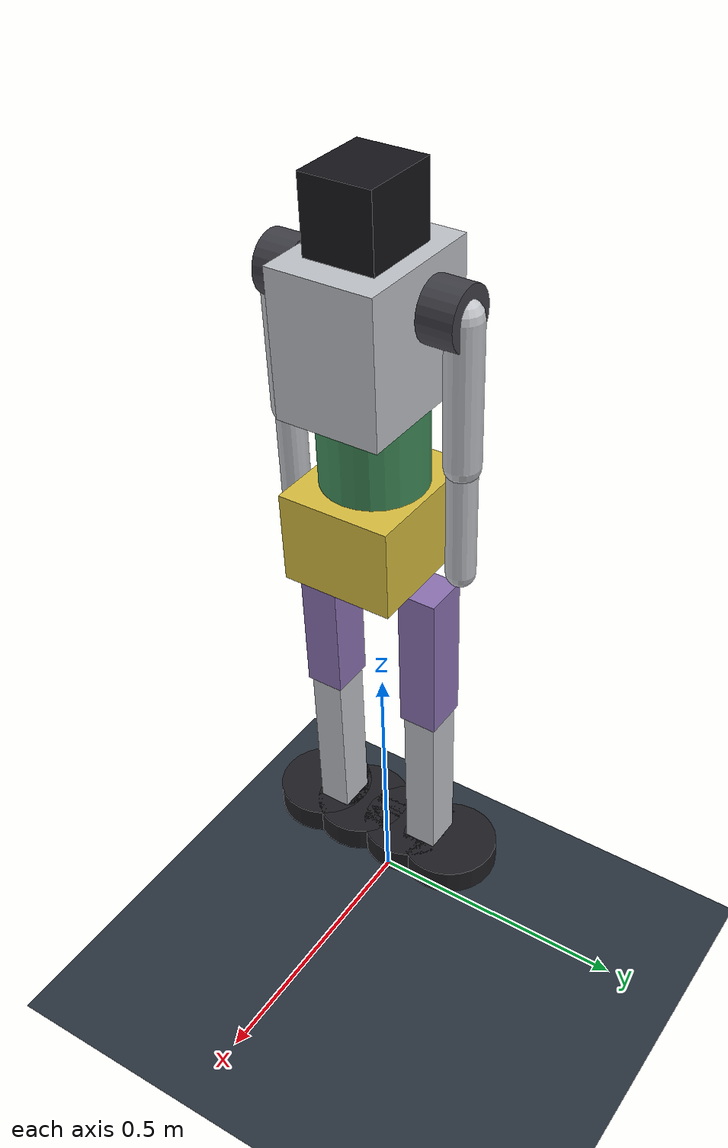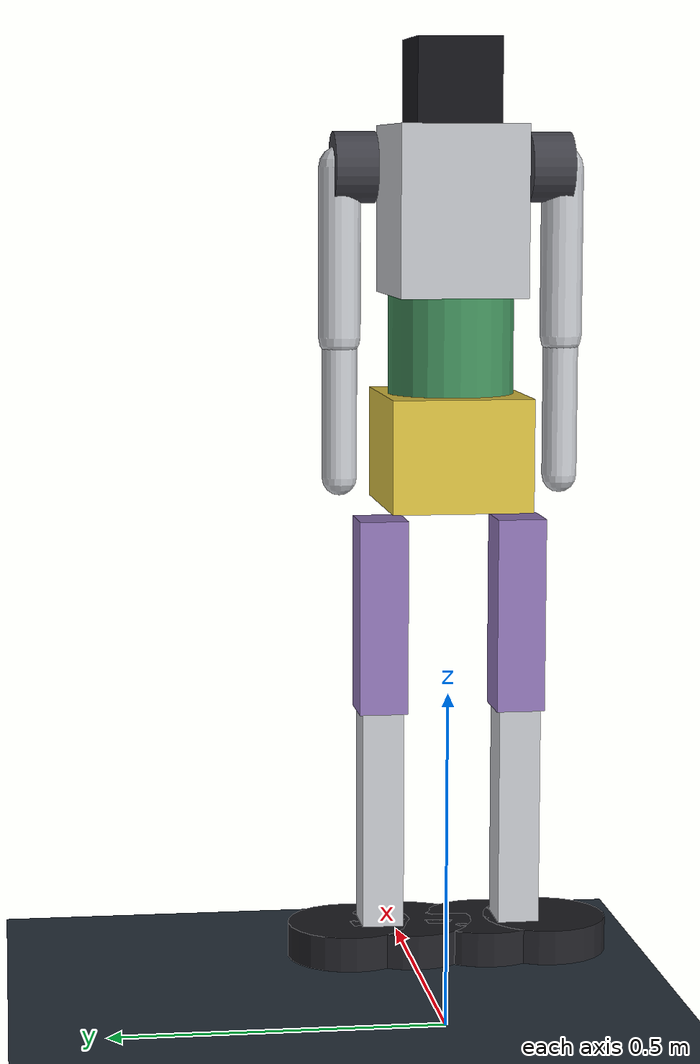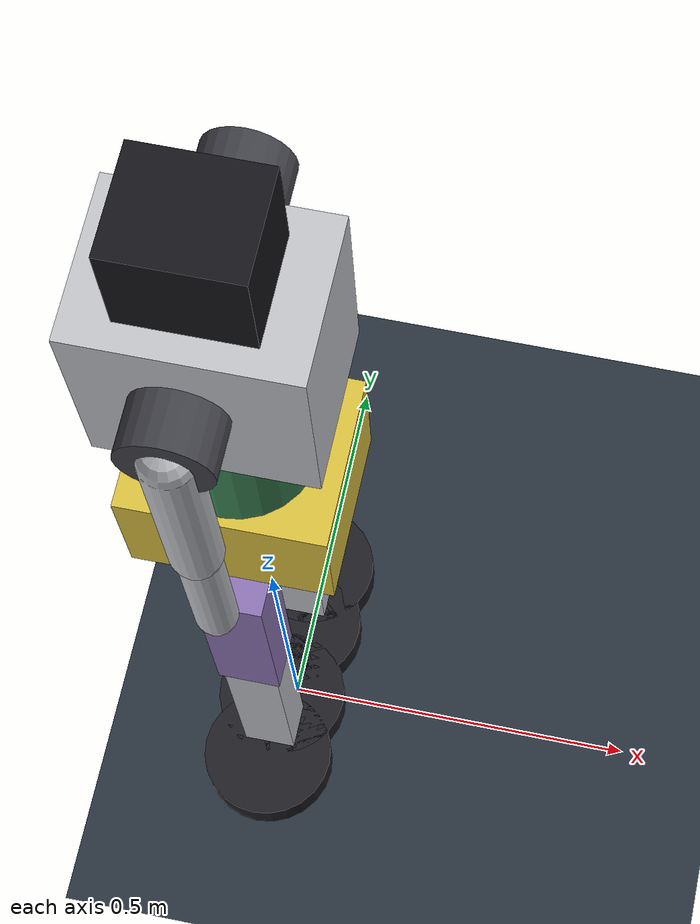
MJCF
<mujoco model="q1_structure_wheeled">
  <!-- Built from Drive CAD structure ref (dual-wheel foot humanoid). -->
  <compiler angle="radian" autolimits="true"/>
  <option timestep="0.002" gravity="0 0 -9.81" integrator="implicitfast"/>

  <default>
    <joint damping="0.8" armature="0.02"/>
    <geom friction="1.8 0.15 0.008" condim="3" solref="0.02 1"/>
    <motor ctrllimited="true" ctrlrange="-1 1"/>
  </default>

  <asset>
    <texture name="grid" type="2d" builtin="checker"
             rgb1="0.2 0.25 0.3" rgb2="0.12 0.15 0.18" width="512" height="512"/>
    <material name="grid" texture="grid" texrepeat="8 8" reflectance="0.05"/>
    <material name="frame" rgba="0.75 0.76 0.78 1"/>
    <material name="torso_mid" rgba="0.25 0.55 0.35 1"/>
    <material name="pelvis" rgba="0.85 0.75 0.25 1"/>
    <material name="hip" rgba="0.55 0.45 0.70 1"/>
    <material name="actuator" rgba="0.25 0.25 0.28 1"/>
    <material name="wheel" rgba="0.12 0.12 0.14 1"/>
    <material name="head" rgba="0.08 0.08 0.10 1"/>
  </asset>

  <worldbody>
    <light pos="0 0 4" dir="0 0 -1"/>
    <geom name="floor" type="plane" size="25 25 0.05" material="grid"/>

    <body name="base" pos="0 0 0.78">
      <freejoint name="root"/>
      <inertial pos="0 0 0.02" mass="7" diaginertia="0.06 0.07 0.05"/>
      <geom type="box" size="0.12 0.10 0.08" pos="0 0 0.08" material="pelvis"/>
      <site name="imu" pos="0 0 0.08" size="0.01"/>

      <body name="torso_mid" pos="0 0 0.16">
        <joint name="waist_yaw" type="hinge" axis="0 0 1" range="-0.6 0.6"/>
        <inertial pos="0 0 0.07" mass="3" diaginertia="0.02 0.02 0.015"/>
        <geom type="cylinder" size="0.09 0.07" pos="0 0 0.07" material="torso_mid"/>

        <body name="torso_upper" pos="0 0 0.14">
          <joint name="waist_pitch" type="hinge" axis="0 1 0" range="-0.4 0.4"/>
          <inertial pos="0 0 0.12" mass="5" diaginertia="0.04 0.05 0.03"/>
          <geom type="box" size="0.12 0.09 0.12" pos="0 0 0.12" material="frame"/>
          <geom type="box" size="0.07 0.06 0.06" pos="0 0 0.30" material="head"/>

          <body name="l_arm" pos="0 0.14 0.18">
            <joint name="l_shoulder_pitch" type="hinge" axis="0 1 0" range="-2 1.5"/>
            <inertial pos="0 0 -0.10" mass="1.2" diaginertia="0.01 0.01 0.002"/>
            <geom type="cylinder" size="0.05 0.03" quat="0.707 0.707 0 0" material="actuator"/>
            <geom type="capsule" fromto="0 0.02 0 0 0.02 -0.24" size="0.03" material="frame"/>
            <body name="l_fore" pos="0 0.02 -0.24">
              <joint name="l_elbow" type="hinge" axis="0 1 0" range="-2.2 0"/>
              <inertial pos="0 0 -0.10" mass="0.8" diaginertia="0.006 0.006 0.001"/>
              <geom type="capsule" fromto="0 0 0 0 0 -0.20" size="0.025" material="frame"/>
            </body>
          </body>

          <body name="r_arm" pos="0 -0.14 0.18">
            <joint name="r_shoulder_pitch" type="hinge" axis="0 1 0" range="-2 1.5"/>
            <inertial pos="0 0 -0.10" mass="1.2" diaginertia="0.01 0.01 0.002"/>
            <geom type="cylinder" size="0.05 0.03" quat="0.707 0.707 0 0" material="actuator"/>
            <geom type="capsule" fromto="0 -0.02 0 0 -0.02 -0.24" size="0.03" material="frame"/>
            <body name="r_fore" pos="0 -0.02 -0.24">
              <joint name="r_elbow" type="hinge" axis="0 1 0" range="-2.2 0"/>
              <inertial pos="0 0 -0.10" mass="0.8" diaginertia="0.006 0.006 0.001"/>
              <geom type="capsule" fromto="0 0 0 0 0 -0.20" size="0.025" material="frame"/>
            </body>
          </body>
        </body>
      </body>

      <!-- LEFT LEG + dual wheels -->
      <body name="l_thigh" pos="0 0.10 -0.02">
        <joint name="l_hip_pitch" type="hinge" axis="0 1 0" range="-1.4 1.0"/>
        <inertial pos="0 0 -0.14" mass="3" diaginertia="0.03 0.03 0.01"/>
        <geom type="box" size="0.04 0.035 0.14" pos="0 0 -0.14" material="hip"/>
        <body name="l_shank" pos="0 0 -0.28">
          <joint name="l_knee" type="hinge" axis="0 1 0" range="0 2.2"/>
          <inertial pos="0 0 -0.16" mass="2.2" diaginertia="0.025 0.025 0.008"/>
          <geom type="box" size="0.035 0.03 0.16" pos="0 0 -0.16" material="frame"/>
          <body name="l_wheel_inner" pos="0 0.045 -0.34">
            <joint name="l_wheel_inner" type="hinge" axis="0 1 0" damping="0.05"/>
            <inertial pos="0 0 0" mass="0.6" diaginertia="0.002 0.003 0.002"/>
            <geom type="cylinder" size="0.09 0.025" material="wheel" friction="1.8 0.1 0.005"/>
          </body>
          <body name="l_wheel_outer" pos="0 -0.045 -0.34">
            <joint name="l_wheel_outer" type="hinge" axis="0 1 0" damping="0.05"/>
            <inertial pos="0 0 0" mass="0.6" diaginertia="0.002 0.003 0.002"/>
            <geom type="cylinder" size="0.09 0.025" material="wheel" friction="1.8 0.1 0.005"/>
          </body>
        </body>
      </body>

      <!-- RIGHT LEG + dual wheels -->
      <body name="r_thigh" pos="0 -0.10 -0.02">
        <joint name="r_hip_pitch" type="hinge" axis="0 1 0" range="-1.4 1.0"/>
        <inertial pos="0 0 -0.14" mass="3" diaginertia="0.03 0.03 0.01"/>
        <geom type="box" size="0.04 0.035 0.14" pos="0 0 -0.14" material="hip"/>
        <body name="r_shank" pos="0 0 -0.28">
          <joint name="r_knee" type="hinge" axis="0 1 0" range="0 2.2"/>
          <inertial pos="0 0 -0.16" mass="2.2" diaginertia="0.025 0.025 0.008"/>
          <geom type="box" size="0.035 0.03 0.16" pos="0 0 -0.16" material="frame"/>
          <body name="r_wheel_inner" pos="0 -0.045 -0.34">
            <joint name="r_wheel_inner" type="hinge" axis="0 1 0" damping="0.05"/>
            <inertial pos="0 0 0" mass="0.6" diaginertia="0.002 0.003 0.002"/>
            <geom type="cylinder" size="0.09 0.025" material="wheel" friction="1.8 0.1 0.005"/>
          </body>
          <body name="r_wheel_outer" pos="0 0.045 -0.34">
            <joint name="r_wheel_outer" type="hinge" axis="0 1 0" damping="0.05"/>
            <inertial pos="0 0 0" mass="0.6" diaginertia="0.002 0.003 0.002"/>
            <geom type="cylinder" size="0.09 0.025" material="wheel" friction="1.8 0.1 0.005"/>
          </body>
        </body>
      </body>
    </body>
  </worldbody>

  <actuator>
    <motor name="l_drive" joint="l_wheel_inner" gear="6" ctrlrange="-1 1"/>
    <motor name="l_drive2" joint="l_wheel_outer" gear="6" ctrlrange="-1 1"/>
    <motor name="r_drive" joint="r_wheel_inner" gear="6" ctrlrange="-1 1"/>
    <motor name="r_drive2" joint="r_wheel_outer" gear="6" ctrlrange="-1 1"/>
    <position name="l_hip" joint="l_hip_pitch" kp="80" ctrlrange="-1.4 1.0"/>
    <position name="r_hip" joint="r_hip_pitch" kp="80" ctrlrange="-1.4 1.0"/>
    <position name="l_knee" joint="l_knee" kp="100" ctrlrange="0 2.2"/>
    <position name="r_knee" joint="r_knee" kp="100" ctrlrange="0 2.2"/>
    <position name="waist_yaw_act" joint="waist_yaw" kp="40" ctrlrange="-0.6 0.6"/>
    <position name="waist_pitch_act" joint="waist_pitch" kp="40" ctrlrange="-0.4 0.4"/>
  </actuator>

  <sensor>
    <framepos name="base_pos" objtype="body" objname="base"/>
    <framelinvel name="base_linvel" objtype="body" objname="base"/>
  </sensor>
</mujoco>
